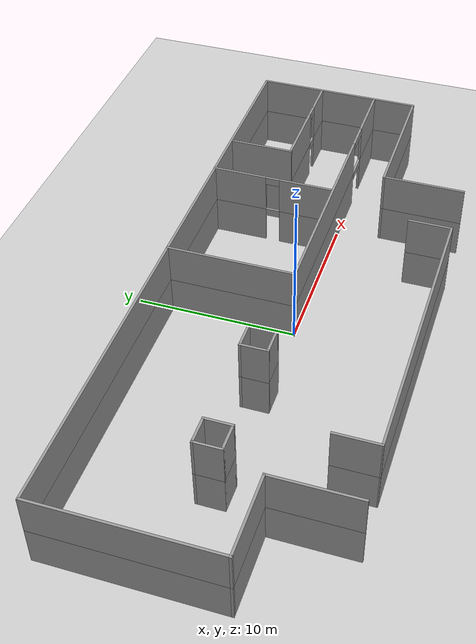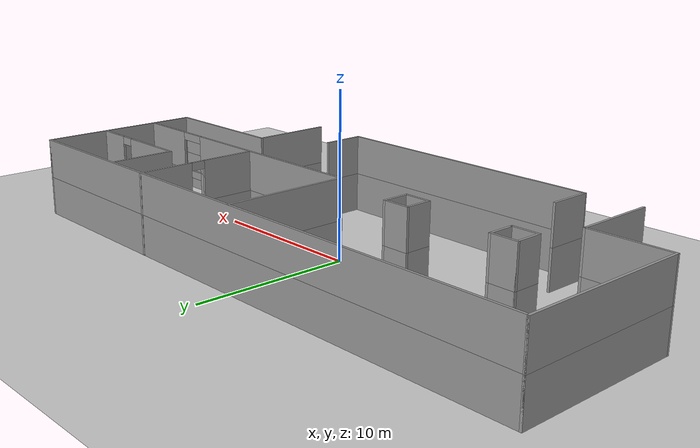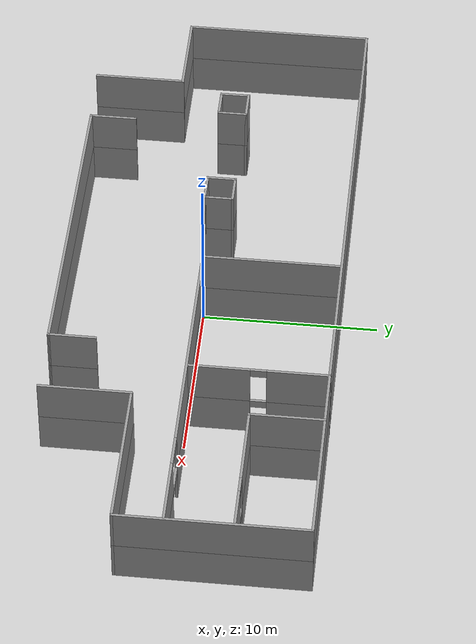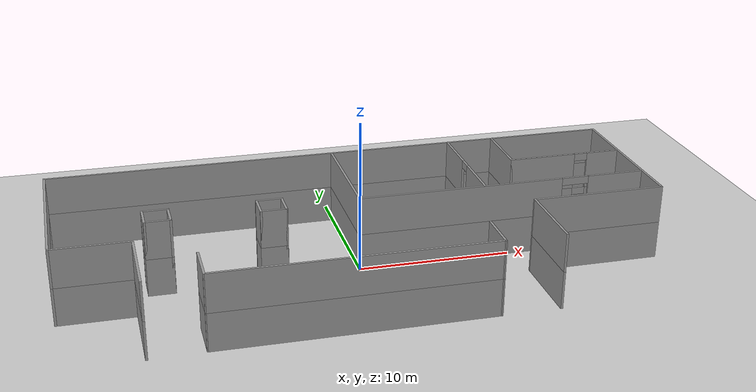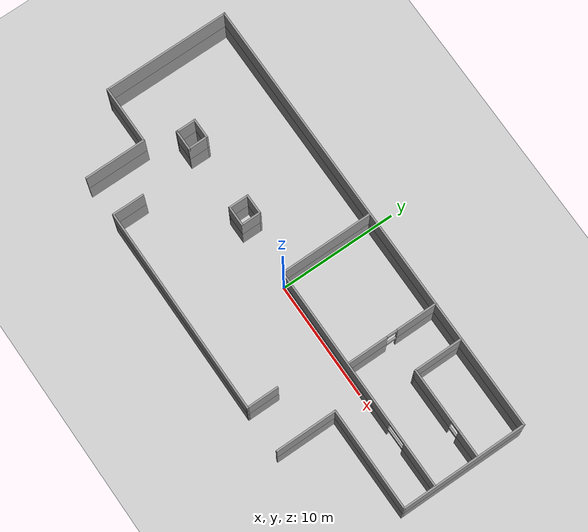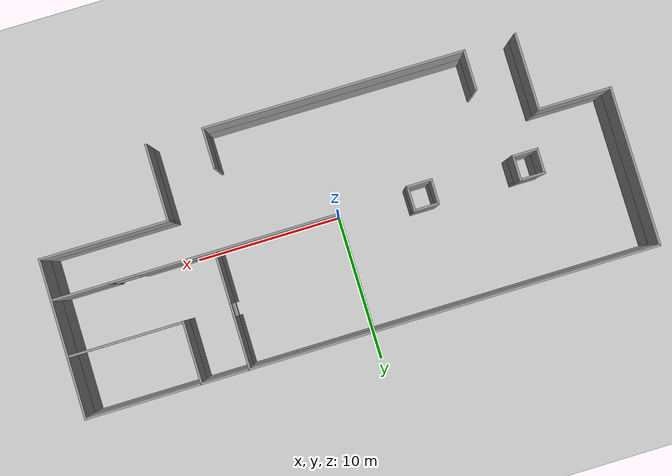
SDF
<sdf version="1.6">
 <world name="default">
  <light name="sun" type="directional">
   <pose>0 0 10 0 -0 0</pose>
   <diffuse>0.8 0.8 0.8 1</diffuse>
   <specular>0.2 0.2 0.2 1</specular>
   <attenuation>
    <range>1000</range>
    <constant>0.9</constant>
    <linear>0.01</linear>
    <quadratic>0.001</quadratic>
   </attenuation>
   <direction>-0.5 0.1 -0.9</direction>
  </light>
  <model name="ground_plane">
   <static>1</static>
   <link name="link">
    <collision name="collision">
     <geometry><plane><normal>0 0 1</normal><size>100 100</size></plane></geometry>
     <surface>
      <contact><collide_bitmask>65535</collide_bitmask></contact>
      <friction><ode><mu>100</mu><mu2>50</mu2></ode></friction>
     </surface>
    </collision>
    <visual name="visual">
     <cast_shadows>0</cast_shadows>
     <geometry><plane><normal>0 0 1</normal><size>100 100</size></plane></geometry>
     <material>
      <script><uri>file://media/materials/scripts/gazebo.material</uri><name>Gazebo/Grey</name></script>
     </material>
    </visual>
   </link>
  </model>
  <gravity>0 0 -9.8</gravity>
  <magnetic_field>6e-06 2.3e-05 -4.2e-05</magnetic_field>
  <atmosphere type="adiabatic"/>
  <physics name="default_physics" default="0" type="ode">
   <max_step_size>0.001</max_step_size>
   <real_time_factor>1</real_time_factor>
   <real_time_update_rate>1000</real_time_update_rate>
  </physics>
  <scene><ambient>0.4 0.4 0.4 1</ambient><background>0.7 0.7 0.7 1</background><shadows>1</shadows></scene>
  <audio><device>default</device></audio>
  <spherical_coordinates>
   <surface_model>EARTH_WGS84</surface_model>
   <latitude_deg>0</latitude_deg>
   <longitude_deg>0</longitude_deg>
   <elevation>0</elevation>
   <heading_deg>0</heading_deg>
  </spherical_coordinates>
  <model name="hospital">
   <link name="Floor_0">
    <collision name="Floor_0_Collision">
     <geometry><box><size>38.5 15.8615 0.1</size></box></geometry>
     <pose>0 0 0.05 0 -0 0</pose>
    </collision>
   </link>
   <link name="Wall_0">
    <collision name="Wall_0_Collision">
     <geometry><box><size>5 0.15 2.5</size></box></geometry>
     <pose>0 0 1.25 0 -0 0</pose>
    </collision>
    <visual name="Wall_0_Visual">
     <pose>0 0 1.25 0 -0 0</pose>
     <geometry><box><size>5 0.15 2.5</size></box></geometry>
     <material>
      <script><uri>file://media/materials/scripts/gazebo.material</uri><name>Gazebo/Grey</name></script>
      <ambient>1 1 1 1</ambient>
     </material>
     <meta><layer>0</layer></meta>
    </visual>
    <pose>-16.75 -2.75575 0 0 -0 3.14159</pose>
   </link>
   <link name="Wall_1">
    <collision name="Wall_1_Collision">
     <geometry><box><size>10.75 0.15 2.5</size></box></geometry>
     <pose>0 0 1.25 0 -0 0</pose>
    </collision>
    <visual name="Wall_1_Visual">
     <pose>0 0 1.25 0 -0 0</pose>
     <geometry><box><size>10.75 0.15 2.5</size></box></geometry>
     <material>
      <script><uri>file://media/materials/scripts/gazebo.material</uri><name>Gazebo/Grey</name></script>
      <ambient>1 1 1 1</ambient>
     </material>
     <meta><layer>0</layer></meta>
    </visual>
    <pose>-19.175 2.54425 0 0 -0 1.5708</pose>
   </link>
   <link name="Wall_11">
    <collision name="Wall_11_Collision">
     <geometry><box><size>8 0.15 2.5</size></box></geometry>
     <pose>0 0 1.25 0 -0 0</pose>
    </collision>
    <visual name="Wall_11_Visual">
     <pose>0 0 1.25 0 -0 0</pose>
     <geometry><box><size>8 0.15 2.5</size></box></geometry>
     <material>
      <script><uri>file://media/materials/scripts/gazebo.material</uri><name>Gazebo/Grey</name></script>
      <ambient>1 1 1 1</ambient>
     </material>
     <meta><layer>0</layer></meta>
    </visual>
    <pose>-0.039832 3.91275 0 0 -0 -1.5708</pose>
   </link>
   <link name="Wall_12">
    <pose>9.51017 -0.012252 0 0 -0 0</pose>
    <visual name="Wall_12_Visual_0">
     <pose>-2.79957 0 1.25 0 -0 0</pose>
     <geometry><box><size>13.6509 0.15 2.5</size></box></geometry>
     <material>
      <script><uri>file://media/materials/scripts/gazebo.material</uri><name>Gazebo/Grey</name></script>
      <ambient>1 1 1 1</ambient>
     </material>
     <meta><layer>0</layer></meta>
    </visual>
    <collision name="Wall_12_Collision_0">
     <geometry><box><size>13.6509 0.15 2.5</size></box></geometry>
     <pose>-2.79957 0 1.25 0 -0 0</pose>
    </collision>
    <visual name="Wall_12_Visual_1">
     <pose>7.72543 0 1.25 0 -0 0</pose>
     <geometry><box><size>3.79915 0.15 2.5</size></box></geometry>
     <material>
      <script><uri>file://media/materials/scripts/gazebo.material</uri><name>Gazebo/Grey</name></script>
      <ambient>1 1 1 1</ambient>
     </material>
     <meta><layer>0</layer></meta>
    </visual>
    <collision name="Wall_12_Collision_1">
     <geometry><box><size>3.79915 0.15 2.5</size></box></geometry>
     <pose>7.72543 0 1.25 0 -0 0</pose>
    </collision>
    <visual name="Wall_12_Visual_2">
     <pose>4.92585 0 2.25 0 -0 0</pose>
     <geometry><box><size>1.8 0.15 0.5</size></box></geometry>
     <material>
      <script><uri>file://media/materials/scripts/gazebo.material</uri><name>Gazebo/Grey</name></script>
      <ambient>1 1 1 1</ambient>
     </material>
     <meta><layer>0</layer></meta>
    </visual>
    <collision name="Wall_12_Collision_2">
     <geometry><box><size>1.8 0.15 0.5</size></box></geometry>
     <pose>4.92585 0 2.25 0 -0 0</pose>
    </collision>
   </link>
   <link name="Wall_18">
    <pose>8.25916 3.93075 0 0 -0 -1.5708</pose>
    <visual name="Wall_18_Visual_0">
     <pose>-2.22898 0 1.25 0 -0 0</pose>
     <geometry><box><size>3.54204 0.15 2.5</size></box></geometry>
     <material>
      <script><uri>file://media/materials/scripts/gazebo.material</uri><name>Gazebo/Grey</name></script>
      <ambient>1 1 1 1</ambient>
     </material>
     <meta><layer>0</layer></meta>
    </visual>
    <collision name="Wall_18_Collision_0">
     <geometry><box><size>3.54204 0.15 2.5</size></box></geometry>
     <pose>-2.22898 0 1.25 0 -0 0</pose>
    </collision>
    <visual name="Wall_18_Visual_1">
     <pose>2.22102 0 1.25 0 -0 0</pose>
     <geometry><box><size>3.55796 0.15 2.5</size></box></geometry>
     <material>
      <script><uri>file://media/materials/scripts/gazebo.material</uri><name>Gazebo/Grey</name></script>
      <ambient>1 1 1 1</ambient>
     </material>
     <meta><layer>0</layer></meta>
    </visual>
    <collision name="Wall_18_Collision_1">
     <geometry><box><size>3.55796 0.15 2.5</size></box></geometry>
     <pose>2.22102 0 1.25 0 -0 0</pose>
    </collision>
    <visual name="Wall_18_Visual_2">
     <pose>-0.007958 0 2.25 0 -0 0</pose>
     <geometry><box><size>0.9 0.15 0.5</size></box></geometry>
     <material>
      <script><uri>file://media/materials/scripts/gazebo.material</uri><name>Gazebo/Grey</name></script>
      <ambient>1 1 1 1</ambient>
     </material>
     <meta><layer>0</layer></meta>
    </visual>
    <collision name="Wall_18_Collision_2">
     <geometry><box><size>0.9 0.15 0.5</size></box></geometry>
     <pose>-0.007958 0 2.25 0 -0 0</pose>
    </collision>
   </link>
   <link name="Wall_2">
    <collision name="Wall_2_Collision">
     <geometry><box><size>38.5 0.15 2.5</size></box></geometry>
     <pose>0 0 1.25 0 -0 0</pose>
    </collision>
    <visual name="Wall_2_Visual">
     <pose>0 0 1.25 0 -0 0</pose>
     <geometry><box><size>38.5 0.15 2.5</size></box></geometry>
     <material>
      <script><uri>file://media/materials/scripts/gazebo.material</uri><name>Gazebo/Grey</name></script>
      <ambient>1 1 1 1</ambient>
     </material>
     <meta><layer>0</layer></meta>
    </visual>
    <pose>0 7.84425 0 0 -0 0</pose>
   </link>
   <link name="Wall_20">
    <collision name="Wall_20_Collision">
     <geometry><box><size>4.25 0.15 2.5</size></box></geometry>
     <pose>0 0 1.25 0 -0 0</pose>
    </collision>
    <visual name="Wall_20_Visual">
     <pose>0 0 1.25 0 -0 0</pose>
     <geometry><box><size>4.25 0.15 2.5</size></box></geometry>
     <material>
      <script><uri>file://media/materials/scripts/gazebo.material</uri><name>Gazebo/Grey</name></script>
      <ambient>1 1 1 1</ambient>
     </material>
     <meta><layer>0</layer></meta>
    </visual>
    <pose>11.4696 5.79267 0 0 -0 -1.5708</pose>
   </link>
   <link name="Wall_21">
    <pose>15.2696 3.74267 0 0 -0 0</pose>
    <visual name="Wall_21_Visual_0">
     <pose>-1.57927 0 1.25 0 -0 0</pose>
     <geometry><box><size>4.59146 0.15 2.5</size></box></geometry>
     <material>
      <script><uri>file://media/materials/scripts/gazebo.material</uri><name>Gazebo/Grey</name></script>
      <ambient>1 1 1 1</ambient>
     </material>
     <meta><layer>0</layer></meta>
    </visual>
    <collision name="Wall_21_Collision_0">
     <geometry><box><size>4.59146 0.15 2.5</size></box></geometry>
     <pose>-1.57927 0 1.25 0 -0 0</pose>
    </collision>
    <visual name="Wall_21_Visual_1">
     <pose>2.74573 0 1.25 0 -0 0</pose>
     <geometry><box><size>2.25854 0.15 2.5</size></box></geometry>
     <material>
      <script><uri>file://media/materials/scripts/gazebo.material</uri><name>Gazebo/Grey</name></script>
      <ambient>1 1 1 1</ambient>
     </material>
     <meta><layer>0</layer></meta>
    </visual>
    <collision name="Wall_21_Collision_1">
     <geometry><box><size>2.25854 0.15 2.5</size></box></geometry>
     <pose>2.74573 0 1.25 0 -0 0</pose>
    </collision>
    <visual name="Wall_21_Visual_2">
     <pose>1.16646 0 2.25 0 -0 0</pose>
     <geometry><box><size>0.9 0.15 0.5</size></box></geometry>
     <material>
      <script><uri>file://media/materials/scripts/gazebo.material</uri><name>Gazebo/Grey</name></script>
      <ambient>1 1 1 1</ambient>
     </material>
     <meta><layer>0</layer></meta>
    </visual>
    <collision name="Wall_21_Collision_2">
     <geometry><box><size>0.9 0.15 0.5</size></box></geometry>
     <pose>1.16646 0 2.25 0 -0 0</pose>
    </collision>
   </link>
   <link name="Wall_23">
    <collision name="Wall_23_Collision">
     <geometry><box><size>2.75 0.15 2.5</size></box></geometry>
     <pose>0 0 1.25 0 -0 0</pose>
    </collision>
    <visual name="Wall_23_Visual">
     <pose>0 0 1.25 0 -0 0</pose>
     <geometry><box><size>2.75 0.15 2.5</size></box></geometry>
     <material>
      <script><uri>file://media/materials/scripts/gazebo.material</uri><name>Gazebo/Grey</name></script>
      <ambient>1 1 1 1</ambient>
     </material>
     <meta><layer>0</layer></meta>
    </visual>
    <pose>6.76134 -6.53356 0 0 -0 1.5708</pose>
   </link>
   <link name="Wall_25">
    <collision name="Wall_25_Collision">
     <geometry><box><size>2.75 0.15 2.5</size></box></geometry>
     <pose>0 0 1.25 0 -0 0</pose>
    </collision>
    <visual name="Wall_25_Visual">
     <pose>0 0 1.25 0 -0 0</pose>
     <geometry><box><size>2.75 0.15 2.5</size></box></geometry>
     <material>
      <script><uri>file://media/materials/scripts/gazebo.material</uri><name>Gazebo/Grey</name></script>
      <ambient>1 1 1 1</ambient>
     </material>
     <meta><layer>0</layer></meta>
    </visual>
    <pose>-10.841 -6.48006 0 0 -0 1.5708</pose>
   </link>
   <link name="Wall_27">
    <collision name="Wall_27_Collision">
     <geometry><box><size>17.7524 0.15 2.5</size></box></geometry>
     <pose>0 0 1.25 0 -0 0</pose>
    </collision>
    <visual name="Wall_27_Visual">
     <pose>0 0 1.25 0 -0 0</pose>
     <geometry><box><size>17.7524 0.15 2.5</size></box></geometry>
     <material>
      <script><uri>file://media/materials/scripts/gazebo.material</uri><name>Gazebo/Grey</name></script>
      <ambient>1 1 1 1</ambient>
     </material>
     <meta><layer>0</layer></meta>
    </visual>
    <pose>-2.03982 -7.80681 0 0 -0 -0.00304</pose>
   </link>
   <link name="Wall_29">
    <collision name="Wall_29_Collision">
     <geometry><box><size>5.25 0.15 2.5</size></box></geometry>
     <pose>0 0 1.25 0 -0 0</pose>
    </collision>
    <visual name="Wall_29_Visual">
     <pose>0 0 1.25 0 -0 0</pose>
     <geometry><box><size>5.25 0.15 2.5</size></box></geometry>
     <material>
      <script><uri>file://media/materials/scripts/gazebo.material</uri><name>Gazebo/Grey</name></script>
      <ambient>1 1 1 1</ambient>
     </material>
     <meta><layer>0</layer></meta>
    </visual>
    <pose>10.575 -5.30575 0 0 -0 -1.5708</pose>
   </link>
   <link name="Wall_3">
    <collision name="Wall_3_Collision">
     <geometry><box><size>10.75 0.15 2.5</size></box></geometry>
     <pose>0 0 1.25 0 -0 0</pose>
    </collision>
    <visual name="Wall_3_Visual">
     <pose>0 0 1.25 0 -0 0</pose>
     <geometry><box><size>10.75 0.15 2.5</size></box></geometry>
     <material>
      <script><uri>file://media/materials/scripts/gazebo.material</uri><name>Gazebo/Grey</name></script>
      <ambient>1 1 1 1</ambient>
     </material>
     <meta><layer>0</layer></meta>
    </visual>
    <pose>19.175 2.54425 0 0 -0 -1.5708</pose>
   </link>
   <link name="Wall_35">
    <collision name="Wall_35_Collision">
     <geometry><box><size>1.75 0.15 2.5</size></box></geometry>
     <pose>0 0 1.25 0 -0 0</pose>
    </collision>
    <visual name="Wall_35_Visual">
     <pose>0 0 1.25 0 -0 0</pose>
     <geometry><box><size>1.75 0.15 2.5</size></box></geometry>
     <material>
      <script><uri>file://media/materials/scripts/gazebo.material</uri><name>Gazebo/Grey</name></script>
      <ambient>1 1 1 1</ambient>
     </material>
     <meta><layer>0</layer></meta>
    </visual>
    <pose>-13.4626 0.461862 0 0 -0 -1.5708</pose>
   </link>
   <link name="Wall_36">
    <collision name="Wall_36_Collision">
     <geometry><box><size>1.75 0.15 2.5</size></box></geometry>
     <pose>0 0 1.25 0 -0 0</pose>
    </collision>
    <visual name="Wall_36_Visual">
     <pose>0 0 1.25 0 -0 0</pose>
     <geometry><box><size>1.75 0.15 2.5</size></box></geometry>
     <material>
      <script><uri>file://media/materials/scripts/gazebo.material</uri><name>Gazebo/Grey</name></script>
      <ambient>1 1 1 1</ambient>
     </material>
     <meta><layer>0</layer></meta>
    </visual>
    <pose>-12.6626 -0.338138 0 0 -0 0</pose>
   </link>
   <link name="Wall_37">
    <collision name="Wall_37_Collision">
     <geometry><box><size>1.75 0.15 2.5</size></box></geometry>
     <pose>0 0 1.25 0 -0 0</pose>
    </collision>
    <visual name="Wall_37_Visual">
     <pose>0 0 1.25 0 -0 0</pose>
     <geometry><box><size>1.75 0.15 2.5</size></box></geometry>
     <material>
      <script><uri>file://media/materials/scripts/gazebo.material</uri><name>Gazebo/Grey</name></script>
      <ambient>1 1 1 1</ambient>
     </material>
     <meta><layer>0</layer></meta>
    </visual>
    <pose>-11.8626 0.461862 0 0 -0 1.5708</pose>
   </link>
   <link name="Wall_38">
    <collision name="Wall_38_Collision">
     <geometry><box><size>1.75 0.15 2.5</size></box></geometry>
     <pose>0 0 1.25 0 -0 0</pose>
    </collision>
    <visual name="Wall_38_Visual">
     <pose>0 0 1.25 0 -0 0</pose>
     <geometry><box><size>1.75 0.15 2.5</size></box></geometry>
     <material>
      <script><uri>file://media/materials/scripts/gazebo.material</uri><name>Gazebo/Grey</name></script>
      <ambient>1 1 1 1</ambient>
     </material>
     <meta><layer>0</layer></meta>
    </visual>
    <pose>-12.6626 1.26186 0 0 -0 3.14159</pose>
   </link>
   <link name="Wall_4">
    <collision name="Wall_4_Collision">
     <geometry><box><size>8.75 0.15 2.5</size></box></geometry>
     <pose>0 0 1.25 0 -0 0</pose>
    </collision>
    <visual name="Wall_4_Visual">
     <pose>0 0 1.25 0 -0 0</pose>
     <geometry><box><size>8.75 0.15 2.5</size></box></geometry>
     <material>
      <script><uri>file://media/materials/scripts/gazebo.material</uri><name>Gazebo/Grey</name></script>
      <ambient>1 1 1 1</ambient>
     </material>
     <meta><layer>0</layer></meta>
    </visual>
    <pose>14.875 -2.75575 0 0 -0 3.14159</pose>
   </link>
   <link name="Wall_44">
    <collision name="Wall_44_Collision">
     <geometry><box><size>1.75 0.15 2.5</size></box></geometry>
     <pose>0 0 1.25 0 -0 0</pose>
    </collision>
    <visual name="Wall_44_Visual">
     <pose>0 0 1.25 0 -0 0</pose>
     <geometry><box><size>1.75 0.15 2.5</size></box></geometry>
     <material>
      <script><uri>file://media/materials/scripts/gazebo.material</uri><name>Gazebo/Grey</name></script>
      <ambient>1 1 1 1</ambient>
     </material>
     <meta><layer>0</layer></meta>
    </visual>
    <pose>-6.37222 0.38592 0 0 -0 -1.5708</pose>
   </link>
   <link name="Wall_45">
    <collision name="Wall_45_Collision">
     <geometry><box><size>1.75 0.15 2.5</size></box></geometry>
     <pose>0 0 1.25 0 -0 0</pose>
    </collision>
    <visual name="Wall_45_Visual">
     <pose>0 0 1.25 0 -0 0</pose>
     <geometry><box><size>1.75 0.15 2.5</size></box></geometry>
     <material>
      <script><uri>file://media/materials/scripts/gazebo.material</uri><name>Gazebo/Grey</name></script>
      <ambient>1 1 1 1</ambient>
     </material>
     <meta><layer>0</layer></meta>
    </visual>
    <pose>-5.57222 -0.41408 0 0 -0 0</pose>
   </link>
   <link name="Wall_46">
    <collision name="Wall_46_Collision">
     <geometry><box><size>1.75 0.15 2.5</size></box></geometry>
     <pose>0 0 1.25 0 -0 0</pose>
    </collision>
    <visual name="Wall_46_Visual">
     <pose>0 0 1.25 0 -0 0</pose>
     <geometry><box><size>1.75 0.15 2.5</size></box></geometry>
     <material>
      <script><uri>file://media/materials/scripts/gazebo.material</uri><name>Gazebo/Grey</name></script>
      <ambient>1 1 1 1</ambient>
     </material>
     <meta><layer>0</layer></meta>
    </visual>
    <pose>-4.77222 0.38592 0 0 -0 1.5708</pose>
   </link>
   <link name="Wall_47">
    <collision name="Wall_47_Collision">
     <geometry><box><size>1.75 0.15 2.5</size></box></geometry>
     <pose>0 0 1.25 0 -0 0</pose>
    </collision>
    <visual name="Wall_47_Visual">
     <pose>0 0 1.25 0 -0 0</pose>
     <geometry><box><size>1.75 0.15 2.5</size></box></geometry>
     <material>
      <script><uri>file://media/materials/scripts/gazebo.material</uri><name>Gazebo/Grey</name></script>
      <ambient>1 1 1 1</ambient>
     </material>
     <meta><layer>0</layer></meta>
    </visual>
    <pose>-5.57222 1.18592 0 0 -0 3.14159</pose>
   </link>
   <link name="Wall_49">
    <collision name="Wall_49_Collision">
     <geometry><box><size>5 0.15 2.5</size></box></geometry>
     <pose>0 0 1.25 0 -0 0</pose>
    </collision>
    <visual name="Wall_49_Visual">
     <pose>0 0 1.25 0 -0 0</pose>
     <geometry><box><size>5 0.15 2.5</size></box></geometry>
     <material>
      <script><uri>file://media/materials/scripts/gazebo.material</uri><name>Gazebo/Grey</name></script>
      <ambient>1 1 1 1</ambient>
     </material>
     <meta><layer>1</layer></meta>
    </visual>
    <pose>-16.75 -2.75575 2.5 0 -0 3.14159</pose>
   </link>
   <link name="Wall_50">
    <collision name="Wall_50_Collision">
     <geometry><box><size>10.75 0.15 2.5</size></box></geometry>
     <pose>0 0 1.25 0 -0 0</pose>
    </collision>
    <visual name="Wall_50_Visual">
     <pose>0 0 1.25 0 -0 0</pose>
     <geometry><box><size>10.75 0.15 2.5</size></box></geometry>
     <material>
      <script><uri>file://media/materials/scripts/gazebo.material</uri><name>Gazebo/Grey</name></script>
      <ambient>1 1 1 1</ambient>
     </material>
     <meta><layer>1</layer></meta>
    </visual>
    <pose>-19.175 2.54425 2.5 0 -0 1.5708</pose>
   </link>
   <link name="Wall_51">
    <collision name="Wall_51_Collision">
     <geometry><box><size>38.5 0.15 2.5</size></box></geometry>
     <pose>0 0 1.25 0 -0 0</pose>
    </collision>
    <visual name="Wall_51_Visual">
     <pose>0 0 1.25 0 -0 0</pose>
     <geometry><box><size>38.5 0.15 2.5</size></box></geometry>
     <material>
      <script><uri>file://media/materials/scripts/gazebo.material</uri><name>Gazebo/Grey</name></script>
      <ambient>1 1 1 1</ambient>
     </material>
     <meta><layer>1</layer></meta>
    </visual>
    <pose>0 7.84425 2.5 0 -0 0</pose>
   </link>
   <link name="Wall_52">
    <collision name="Wall_52_Collision">
     <geometry><box><size>10.75 0.15 2.5</size></box></geometry>
     <pose>0 0 1.25 0 -0 0</pose>
    </collision>
    <visual name="Wall_52_Visual">
     <pose>0 0 1.25 0 -0 0</pose>
     <geometry><box><size>10.75 0.15 2.5</size></box></geometry>
     <material>
      <script><uri>file://media/materials/scripts/gazebo.material</uri><name>Gazebo/Grey</name></script>
      <ambient>1 1 1 1</ambient>
     </material>
     <meta><layer>1</layer></meta>
    </visual>
    <pose>19.175 2.54425 2.5 0 -0 -1.5708</pose>
   </link>
   <link name="Wall_53">
    <collision name="Wall_53_Collision">
     <geometry><box><size>8.75 0.15 2.5</size></box></geometry>
     <pose>0 0 1.25 0 -0 0</pose>
    </collision>
    <visual name="Wall_53_Visual">
     <pose>0 0 1.25 0 -0 0</pose>
     <geometry><box><size>8.75 0.15 2.5</size></box></geometry>
     <material>
      <script><uri>file://media/materials/scripts/gazebo.material</uri><name>Gazebo/Grey</name></script>
      <ambient>1 1 1 1</ambient>
     </material>
     <meta><layer>1</layer></meta>
    </visual>
    <pose>14.875 -2.75575 2.5 0 -0 3.14159</pose>
   </link>
   <link name="Wall_54">
    <collision name="Wall_54_Collision">
     <geometry><box><size>5.25 0.15 2.5</size></box></geometry>
     <pose>0 0 1.25 0 -0 0</pose>
    </collision>
    <visual name="Wall_54_Visual">
     <pose>0 0 1.25 0 -0 0</pose>
     <geometry><box><size>5.25 0.15 2.5</size></box></geometry>
     <material>
      <script><uri>file://media/materials/scripts/gazebo.material</uri><name>Gazebo/Grey</name></script>
      <ambient>1 1 1 1</ambient>
     </material>
     <meta><layer>1</layer></meta>
    </visual>
    <pose>-14.325 -5.30575 2.5 0 -0 -1.5708</pose>
   </link>
   <link name="Wall_55">
    <collision name="Wall_55_Collision">
     <geometry><box><size>8 0.15 2.5</size></box></geometry>
     <pose>0 0 1.25 0 -0 0</pose>
    </collision>
    <visual name="Wall_55_Visual">
     <pose>0 0 1.25 0 -0 0</pose>
     <geometry><box><size>8 0.15 2.5</size></box></geometry>
     <material>
      <script><uri>file://media/materials/scripts/gazebo.material</uri><name>Gazebo/Grey</name></script>
      <ambient>1 1 1 1</ambient>
     </material>
     <meta><layer>1</layer></meta>
    </visual>
    <pose>-0.039832 3.91275 2.5 0 -0 -1.5708</pose>
   </link>
   <link name="Wall_56">
    <pose>9.51017 -0.012252 2.5 0 -0 0</pose>
    <visual name="Wall_56_Visual_0">
     <pose>-2.79957 0 1.25 0 -0 0</pose>
     <geometry><box><size>13.6509 0.15 2.5</size></box></geometry>
     <material>
      <script><uri>file://media/materials/scripts/gazebo.material</uri><name>Gazebo/Grey</name></script>
      <ambient>1 1 1 1</ambient>
     </material>
     <meta><layer>1</layer></meta>
    </visual>
    <collision name="Wall_56_Collision_0">
     <geometry><box><size>13.6509 0.15 2.5</size></box></geometry>
     <pose>-2.79957 0 1.25 0 -0 0</pose>
    </collision>
    <visual name="Wall_56_Visual_1">
     <pose>7.72543 0 1.25 0 -0 0</pose>
     <geometry><box><size>3.79915 0.15 2.5</size></box></geometry>
     <material>
      <script><uri>file://media/materials/scripts/gazebo.material</uri><name>Gazebo/Grey</name></script>
      <ambient>1 1 1 1</ambient>
     </material>
     <meta><layer>1</layer></meta>
    </visual>
    <collision name="Wall_56_Collision_1">
     <geometry><box><size>3.79915 0.15 2.5</size></box></geometry>
     <pose>7.72543 0 1.25 0 -0 0</pose>
    </collision>
    <visual name="Wall_56_Visual_2">
     <pose>4.92585 0 2.25 0 -0 0</pose>
     <geometry><box><size>1.8 0.15 0.5</size></box></geometry>
     <material>
      <script><uri>file://media/materials/scripts/gazebo.material</uri><name>Gazebo/Grey</name></script>
      <ambient>1 1 1 1</ambient>
     </material>
     <meta><layer>1</layer></meta>
    </visual>
    <collision name="Wall_56_Collision_2">
     <geometry><box><size>1.8 0.15 0.5</size></box></geometry>
     <pose>4.92585 0 2.25 0 -0 0</pose>
    </collision>
   </link>
   <link name="Wall_57">
    <pose>8.25916 3.93075 2.5 0 -0 -1.5708</pose>
    <visual name="Wall_57_Visual_0">
     <pose>-2.22912 0 1.25 0 -0 0</pose>
     <geometry><box><size>3.54177 0.15 2.5</size></box></geometry>
     <material>
      <script><uri>file://media/materials/scripts/gazebo.material</uri><name>Gazebo/Grey</name></script>
      <ambient>1 1 1 1</ambient>
     </material>
     <meta><layer>1</layer></meta>
    </visual>
    <collision name="Wall_57_Collision_0">
     <geometry><box><size>3.54177 0.15 2.5</size></box></geometry>
     <pose>-2.22912 0 1.25 0 -0 0</pose>
    </collision>
    <visual name="Wall_57_Visual_1">
     <pose>2.22088 0 1.25 0 -0 0</pose>
     <geometry><box><size>3.55823 0.15 2.5</size></box></geometry>
     <material>
      <script><uri>file://media/materials/scripts/gazebo.material</uri><name>Gazebo/Grey</name></script>
      <ambient>1 1 1 1</ambient>
     </material>
     <meta><layer>1</layer></meta>
    </visual>
    <collision name="Wall_57_Collision_1">
     <geometry><box><size>3.55823 0.15 2.5</size></box></geometry>
     <pose>2.22088 0 1.25 0 -0 0</pose>
    </collision>
    <visual name="Wall_57_Visual_2">
     <pose>-0.008229 0 2.25 0 -0 0</pose>
     <geometry><box><size>0.9 0.15 0.5</size></box></geometry>
     <material>
      <script><uri>file://media/materials/scripts/gazebo.material</uri><name>Gazebo/Grey</name></script>
      <ambient>1 1 1 1</ambient>
     </material>
     <meta><layer>1</layer></meta>
    </visual>
    <collision name="Wall_57_Collision_2">
     <geometry><box><size>0.9 0.15 0.5</size></box></geometry>
     <pose>-0.008229 0 2.25 0 -0 0</pose>
    </collision>
   </link>
   <link name="Wall_58">
    <collision name="Wall_58_Collision">
     <geometry><box><size>4.25 0.15 2.5</size></box></geometry>
     <pose>0 0 1.25 0 -0 0</pose>
    </collision>
    <visual name="Wall_58_Visual">
     <pose>0 0 1.25 0 -0 0</pose>
     <geometry><box><size>4.25 0.15 2.5</size></box></geometry>
     <material>
      <script><uri>file://media/materials/scripts/gazebo.material</uri><name>Gazebo/Grey</name></script>
      <ambient>1 1 1 1</ambient>
     </material>
     <meta><layer>1</layer></meta>
    </visual>
    <pose>11.4696 5.79267 2.5 0 -0 -1.5708</pose>
   </link>
   <link name="Wall_59">
    <pose>15.2696 3.74267 2.5 0 -0 0</pose>
    <visual name="Wall_59_Visual_0">
     <pose>-1.57927 0 1.25 0 -0 0</pose>
     <geometry><box><size>4.59146 0.15 2.5</size></box></geometry>
     <material>
      <script><uri>file://media/materials/scripts/gazebo.material</uri><name>Gazebo/Grey</name></script>
      <ambient>1 1 1 1</ambient>
     </material>
     <meta><layer>1</layer></meta>
    </visual>
    <collision name="Wall_59_Collision_0">
     <geometry><box><size>4.59146 0.15 2.5</size></box></geometry>
     <pose>-1.57927 0 1.25 0 -0 0</pose>
    </collision>
    <visual name="Wall_59_Visual_1">
     <pose>2.74573 0 1.25 0 -0 0</pose>
     <geometry><box><size>2.25854 0.15 2.5</size></box></geometry>
     <material>
      <script><uri>file://media/materials/scripts/gazebo.material</uri><name>Gazebo/Grey</name></script>
      <ambient>1 1 1 1</ambient>
     </material>
     <meta><layer>1</layer></meta>
    </visual>
    <collision name="Wall_59_Collision_1">
     <geometry><box><size>2.25854 0.15 2.5</size></box></geometry>
     <pose>2.74573 0 1.25 0 -0 0</pose>
    </collision>
    <visual name="Wall_59_Visual_2">
     <pose>1.16646 0 2.25 0 -0 0</pose>
     <geometry><box><size>0.9 0.15 0.5</size></box></geometry>
     <material>
      <script><uri>file://media/materials/scripts/gazebo.material</uri><name>Gazebo/Grey</name></script>
      <ambient>1 1 1 1</ambient>
     </material>
     <meta><layer>1</layer></meta>
    </visual>
    <collision name="Wall_59_Collision_2">
     <geometry><box><size>0.9 0.15 0.5</size></box></geometry>
     <pose>1.16646 0 2.25 0 -0 0</pose>
    </collision>
   </link>
   <link name="Wall_60">
    <collision name="Wall_60_Collision">
     <geometry><box><size>2.75 0.15 2.5</size></box></geometry>
     <pose>0 0 1.25 0 -0 0</pose>
    </collision>
    <visual name="Wall_60_Visual">
     <pose>0 0 1.25 0 -0 0</pose>
     <geometry><box><size>2.75 0.15 2.5</size></box></geometry>
     <material>
      <script><uri>file://media/materials/scripts/gazebo.material</uri><name>Gazebo/Grey</name></script>
      <ambient>1 1 1 1</ambient>
     </material>
     <meta><layer>1</layer></meta>
    </visual>
    <pose>6.76134 -6.53356 2.5 0 -0 1.5708</pose>
   </link>
   <link name="Wall_61">
    <collision name="Wall_61_Collision">
     <geometry><box><size>2.75 0.15 2.5</size></box></geometry>
     <pose>0 0 1.25 0 -0 0</pose>
    </collision>
    <visual name="Wall_61_Visual">
     <pose>0 0 1.25 0 -0 0</pose>
     <geometry><box><size>2.75 0.15 2.5</size></box></geometry>
     <material>
      <script><uri>file://media/materials/scripts/gazebo.material</uri><name>Gazebo/Grey</name></script>
      <ambient>1 1 1 1</ambient>
     </material>
     <meta><layer>1</layer></meta>
    </visual>
    <pose>-10.841 -6.48006 2.5 0 -0 1.5708</pose>
   </link>
   <link name="Wall_62">
    <collision name="Wall_62_Collision">
     <geometry><box><size>17.7524 0.15 2.5</size></box></geometry>
     <pose>0 0 1.25 0 -0 0</pose>
    </collision>
    <visual name="Wall_62_Visual">
     <pose>0 0 1.25 0 -0 0</pose>
     <geometry><box><size>17.7524 0.15 2.5</size></box></geometry>
     <material>
      <script><uri>file://media/materials/scripts/gazebo.material</uri><name>Gazebo/Grey</name></script>
      <ambient>1 1 1 1</ambient>
     </material>
     <meta><layer>1</layer></meta>
    </visual>
    <pose>-2.03982 -7.80681 2.5 0 -0 -0.00304</pose>
   </link>
   <link name="Wall_63">
    <collision name="Wall_63_Collision">
     <geometry><box><size>5.25 0.15 2.5</size></box></geometry>
     <pose>0 0 1.25 0 -0 0</pose>
    </collision>
    <visual name="Wall_63_Visual">
     <pose>0 0 1.25 0 -0 0</pose>
     <geometry><box><size>5.25 0.15 2.5</size></box></geometry>
     <material>
      <script><uri>file://media/materials/scripts/gazebo.material</uri><name>Gazebo/Grey</name></script>
      <ambient>1 1 1 1</ambient>
     </material>
     <meta><layer>1</layer></meta>
    </visual>
    <pose>10.575 -5.30575 2.5 0 -0 -1.5708</pose>
   </link>
   <link name="Wall_64">
    <collision name="Wall_64_Collision">
     <geometry><box><size>1.75 0.15 2.5</size></box></geometry>
     <pose>0 0 1.25 0 -0 0</pose>
    </collision>
    <visual name="Wall_64_Visual">
     <pose>0 0 1.25 0 -0 0</pose>
     <geometry><box><size>1.75 0.15 2.5</size></box></geometry>
     <material>
      <script><uri>file://media/materials/scripts/gazebo.material</uri><name>Gazebo/Grey</name></script>
      <ambient>1 1 1 1</ambient>
     </material>
     <meta><layer>1</layer></meta>
    </visual>
    <pose>-13.4626 0.461862 2.5 0 -0 -1.5708</pose>
   </link>
   <link name="Wall_65">
    <collision name="Wall_65_Collision">
     <geometry><box><size>1.75 0.15 2.5</size></box></geometry>
     <pose>0 0 1.25 0 -0 0</pose>
    </collision>
    <visual name="Wall_65_Visual">
     <pose>0 0 1.25 0 -0 0</pose>
     <geometry><box><size>1.75 0.15 2.5</size></box></geometry>
     <material>
      <script><uri>file://media/materials/scripts/gazebo.material</uri><name>Gazebo/Grey</name></script>
      <ambient>1 1 1 1</ambient>
     </material>
     <meta><layer>1</layer></meta>
    </visual>
    <pose>-12.6626 -0.338138 2.5 0 -0 0</pose>
   </link>
   <link name="Wall_66">
    <collision name="Wall_66_Collision">
     <geometry><box><size>1.75 0.15 2.5</size></box></geometry>
     <pose>0 0 1.25 0 -0 0</pose>
    </collision>
    <visual name="Wall_66_Visual">
     <pose>0 0 1.25 0 -0 0</pose>
     <geometry><box><size>1.75 0.15 2.5</size></box></geometry>
     <material>
      <script><uri>file://media/materials/scripts/gazebo.material</uri><name>Gazebo/Grey</name></script>
      <ambient>1 1 1 1</ambient>
     </material>
     <meta><layer>1</layer></meta>
    </visual>
    <pose>-11.8626 0.461862 2.5 0 -0 1.5708</pose>
   </link>
   <link name="Wall_67">
    <collision name="Wall_67_Collision">
     <geometry><box><size>1.75 0.15 2.5</size></box></geometry>
     <pose>0 0 1.25 0 -0 0</pose>
    </collision>
    <visual name="Wall_67_Visual">
     <pose>0 0 1.25 0 -0 0</pose>
     <geometry><box><size>1.75 0.15 2.5</size></box></geometry>
     <material>
      <script><uri>file://media/materials/scripts/gazebo.material</uri><name>Gazebo/Grey</name></script>
      <ambient>1 1 1 1</ambient>
     </material>
     <meta><layer>1</layer></meta>
    </visual>
    <pose>-12.6626 1.26186 2.5 0 -0 3.14159</pose>
   </link>
   <link name="Wall_68">
    <collision name="Wall_68_Collision">
     <geometry><box><size>1.75 0.15 2.5</size></box></geometry>
     <pose>0 0 1.25 0 -0 0</pose>
    </collision>
    <visual name="Wall_68_Visual">
     <pose>0 0 1.25 0 -0 0</pose>
     <geometry><box><size>1.75 0.15 2.5</size></box></geometry>
     <material>
      <script><uri>file://media/materials/scripts/gazebo.material</uri><name>Gazebo/Grey</name></script>
      <ambient>1 1 1 1</ambient>
     </material>
     <meta><layer>1</layer></meta>
    </visual>
    <pose>-6.37222 0.38592 2.5 0 -0 -1.5708</pose>
   </link>
   <link name="Wall_69">
    <collision name="Wall_69_Collision">
     <geometry><box><size>1.75 0.15 2.5</size></box></geometry>
     <pose>0 0 1.25 0 -0 0</pose>
    </collision>
    <visual name="Wall_69_Visual">
     <pose>0 0 1.25 0 -0 0</pose>
     <geometry><box><size>1.75 0.15 2.5</size></box></geometry>
     <material>
      <script><uri>file://media/materials/scripts/gazebo.material</uri><name>Gazebo/Grey</name></script>
      <ambient>1 1 1 1</ambient>
     </material>
     <meta><layer>1</layer></meta>
    </visual>
    <pose>-5.57222 -0.41408 2.5 0 -0 0</pose>
   </link>
   <link name="Wall_70">
    <collision name="Wall_70_Collision">
     <geometry><box><size>1.75 0.15 2.5</size></box></geometry>
     <pose>0 0 1.25 0 -0 0</pose>
    </collision>
    <visual name="Wall_70_Visual">
     <pose>0 0 1.25 0 -0 0</pose>
     <geometry><box><size>1.75 0.15 2.5</size></box></geometry>
     <material>
      <script><uri>file://media/materials/scripts/gazebo.material</uri><name>Gazebo/Grey</name></script>
      <ambient>1 1 1 1</ambient>
     </material>
     <meta><layer>1</layer></meta>
    </visual>
    <pose>-4.77222 0.38592 2.5 0 -0 1.5708</pose>
   </link>
   <link name="Wall_71">
    <collision name="Wall_71_Collision">
     <geometry><box><size>1.75 0.15 2.5</size></box></geometry>
     <pose>0 0 1.25 0 -0 0</pose>
    </collision>
    <visual name="Wall_71_Visual">
     <pose>0 0 1.25 0 -0 0</pose>
     <geometry><box><size>1.75 0.15 2.5</size></box></geometry>
     <material>
      <script><uri>file://media/materials/scripts/gazebo.material</uri><name>Gazebo/Grey</name></script>
      <ambient>1 1 1 1</ambient>
     </material>
     <meta><layer>1</layer></meta>
    </visual>
    <pose>-5.57222 1.18592 2.5 0 -0 3.14159</pose>
   </link>
   <link name="Wall_8">
    <collision name="Wall_8_Collision">
     <geometry><box><size>5.25 0.15 2.5</size></box></geometry>
     <pose>0 0 1.25 0 -0 0</pose>
    </collision>
    <visual name="Wall_8_Visual">
     <pose>0 0 1.25 0 -0 0</pose>
     <geometry><box><size>5.25 0.15 2.5</size></box></geometry>
     <material>
      <script><uri>file://media/materials/scripts/gazebo.material</uri><name>Gazebo/Grey</name></script>
      <ambient>1 1 1 1</ambient>
     </material>
     <meta><layer>0</layer></meta>
    </visual>
    <pose>-14.325 -5.30575 0 0 -0 -1.5708</pose>
   </link>
   <static>1</static>
  </model>
 </world>
</sdf>
